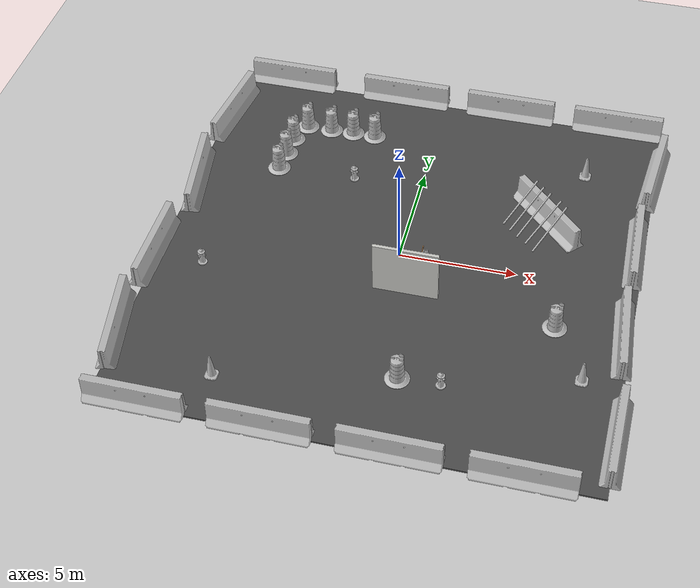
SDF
<sdf version="1.6">
 <world name="default">
  <plugin name="ros_interface_plugin" filename="librotors_gazebo_ros_interface_plugin.so"/>
  <light name="sun" type="directional">
   <pose>0 0 10 0 -0 0</pose>
   <diffuse>0.8 0.8 0.8 1</diffuse>
   <specular>0.2 0.2 0.2 1</specular>
   <attenuation>
    <range>1000</range>
    <constant>0.9</constant>
    <linear>0.01</linear>
    <quadratic>0.001</quadratic>
   </attenuation>
   <direction>-0.5 0.1 -0.9</direction>
  </light>
  <model name="ground_plane">
   <static>1</static>
   <link name="link">
    <collision name="collision">
     <geometry><plane><normal>0 0 1</normal><size>100 100</size></plane></geometry>
     <surface><friction><ode><mu>100</mu><mu2>50</mu2></ode></friction></surface>
    </collision>
    <visual name="visual">
     <cast_shadows>0</cast_shadows>
     <geometry><plane><normal>0 0 1</normal><size>100 100</size></plane></geometry>
     <material>
      <script><uri>file://media/materials/scripts/gazebo.material</uri><name>Gazebo/Grey</name></script>
     </material>
    </visual>
    <velocity_decay><linear>0</linear><angular>0</angular></velocity_decay>
   </link>
  </model>
  <physics name="default_physics" default="0" type="ode">
   <ode>
    <solver>
     <type>quick</type>
     <iters>1000</iters>
     <sor>1.3</sor>
     <use_dynamic_moi_rescaling>0</use_dynamic_moi_rescaling>
    </solver>
    <constraints>
     <cfm>0</cfm>
     <erp>0.2</erp>
     <contact_max_correcting_vel>100</contact_max_correcting_vel>
     <contact_surface_layer>0.001</contact_surface_layer>
    </constraints>
   </ode>
   <max_step_size>0.005</max_step_size>
   <real_time_factor>1</real_time_factor>
   <real_time_update_rate>200</real_time_update_rate>
  </physics>
  <scene><ambient>0.4 0.4 0.4 1</ambient><background>0.7 0.7 0.7 1</background><shadows>1</shadows></scene>
  <model name="asphalt_plane">
   <static>1</static>
   <link name="link">
    <collision name="collision"><geometry><box><size>20 20 0.1</size></box></geometry></collision>
    <visual name="visual">
     <cast_shadows>0</cast_shadows>
     <geometry><box><size>20 20 0.1</size></box></geometry>
     <material>
      <script>
       <uri>model://asphalt_plane/materials/scripts</uri>
       <uri>model://asphalt_plane/materials/textures</uri>
       <name>vrc/asphalt</name>
      </script>
     </material>
    </visual>
    <velocity_decay><linear>0</linear><angular>0</angular></velocity_decay>
   </link>
   <pose>0.076733 -0.110379 0 0 -0 0</pose>
  </model>
  <model name="StandingWall">
   <pose>0.733742 -2.04145 0 0 -0 0</pose>
   <link name="Wall_3">
    <collision name="Wall_3_Collision">
     <geometry><box><size>2.75 0.15 2.5</size></box></geometry>
     <pose>0 0 1.25 0 -0 0</pose>
    </collision>
    <visual name="Wall_3_Visual">
     <pose>0 0 1.25 0 -0 0</pose>
     <geometry><box><size>2.75 0.15 2.5</size></box></geometry>
     <material>
      <script><uri>file://media/materials/scripts/gazebo.material</uri><name>Gazebo/CeilingTiled</name></script>
      <ambient>1 1 1 1</ambient>
     </material>
     <meta><layer>0</layer></meta>
    </visual>
    <pose>-0 0 0 0 -0 3.14159</pose>
   </link>
   <static>1</static>
  </model>
  <model name="cinder_block">
   <link name="link">
    <inertial>
     <pose>0 0 0.1016 0 -0 0</pose>
     <mass>5</mass>
     <inertia>
      <ixx>0.028705</ixx>
      <ixy>0</ixy>
      <iyy>0.073708</iyy>
      <ixz>0</ixz>
      <iyz>0</iyz>
      <izz>0.06908</izz>
     </inertia>
    </inertial>
    <visual name="visual">
     <geometry><mesh><uri>model://cinder_block/meshes/cinder_block.dae</uri></mesh></geometry>
    </visual>
    <collision name="left">
     <pose>0 -0.08465 0.1016 0 -0 0</pose>
     <geometry><box><size>0.43495 0.0339 0.2032</size></box></geometry>
     <surface>
      <contact><ode><max_vel>0.1</max_vel><min_depth>0.001</min_depth></ode></contact>
      <friction><ode><mu>1</mu><mu2>1</mu2></ode></friction>
     </surface>
    </collision>
    <collision name="right">
     <pose>0 0.08465 0.1016 0 -0 0</pose>
     <geometry><box><size>0.43495 0.0339 0.2032</size></box></geometry>
     <surface>
      <contact><ode><max_vel>0.1</max_vel><min_depth>0.001</min_depth></ode></contact>
      <friction><ode><mu>1</mu><mu2>1</mu2></ode></friction>
     </surface>
    </collision>
    <collision name="front">
     <pose>0.18625 0 0.1016 0 -0 0</pose>
     <geometry><box><size>0.0339 0.1354 0.203</size></box></geometry>
     <surface>
      <contact><ode><max_vel>0.1</max_vel><min_depth>0.001</min_depth></ode></contact>
      <friction><ode><mu>1</mu><mu2>1</mu2></ode></friction>
     </surface>
    </collision>
    <collision name="middle">
     <pose>0 0 0.1016 0 -0 0</pose>
     <geometry><box><size>0.0339 0.1354 0.203</size></box></geometry>
     <surface>
      <contact><ode><max_vel>0.1</max_vel><min_depth>0.001</min_depth></ode></contact>
      <friction><ode><mu>1</mu><mu2>1</mu2></ode></friction>
     </surface>
    </collision>
    <collision name="back">
     <pose>-0.18625 0 0.1016 0 -0 0</pose>
     <geometry><box><size>0.0339 0.1354 0.203</size></box></geometry>
     <surface>
      <contact><ode><max_vel>0.1</max_vel><min_depth>0.001</min_depth></ode></contact>
      <friction><ode><mu>1</mu><mu2>1</mu2></ode></friction>
     </surface>
    </collision>
   </link>
   <pose>1.07991 0.107552 0.049095 -0.000935 -1e-06 1.57079</pose>
  </model>
  <model name="timber_board">
   <link name="base">
    <pose>0 0 0.00523 0 -0 0</pose>
    <inertial>
     <mass>0.2765</mass>
     <inertia>
      <ixx>0.0025148</ixx>
      <ixy>0</ixy>
      <ixz>0</ixz>
      <iyy>0.00024037</iyy>
      <iyz>0</iyz>
      <izz>0.00275013</izz>
     </inertia>
    </inertial>
    <collision name="collision">
     <geometry><box><size>0.089 0.609 0.039</size></box></geometry>
     <surface>
      <contact>
       <poissons_ratio>0.347</poissons_ratio>
       <elastic_modulus>8.8e+09</elastic_modulus>
       <ode><kp>100000</kp><kd>100</kd><max_vel>100</max_vel><min_depth>0.001</min_depth></ode>
      </contact>
      <friction>
       <torsional>
        <coefficient>1</coefficient>
        <use_patch_radius>0</use_patch_radius>
        <surface_radius>0.01</surface_radius>
       </torsional>
      </friction>
     </surface>
    </collision>
    <visual name="visual">
     <geometry><box><size>0.089 0.609 0.039</size></box></geometry>
     <material>
      <script><uri>file://media/materials/scripts/gazebo.material</uri><name>Gazebo/Wood</name></script>
     </material>
    </visual>
    <visual name="apriltag_Visual">
     <pose>0 0.26 0.02 0 -0 0</pose>
     <geometry><box><size>0.089 0.089 0.001</size></box></geometry>
     <material>
      <script>
       <uri>model://Apriltag36_11_00000/materials/scripts</uri>
       <uri>model://Apriltag36_11_00000/materials/textures</uri>
       <name>Apriltag36_11_00000</name>
      </script>
     </material>
    </visual>
   </link>
   <pose>0.975227 0.108175 0.35332 1.46664 -5e-06 -1.57074</pose>
  </model>
  <model name="jersey_barrier">
   <static>1</static>
   <link name="link">
    <visual name="visual">
     <geometry><mesh><uri>model://jersey_barrier/meshes/jersey_barrier.dae</uri></mesh></geometry>
    </visual>
    <collision name="upright">
     <pose>0 0 0.5715 0 -0 0</pose>
     <geometry><box><size>4.06542 0.3063 1.143</size></box></geometry>
    </collision>
    <collision name="base">
     <pose>0 0 0.032258 0 -0 0</pose>
     <geometry><box><size>4.06542 0.8107 0.064516</size></box></geometry>
    </collision>
    <collision name="base2">
     <pose>0 0 0.1 0 -0 0</pose>
     <geometry><box><size>4.06542 0.65 0.1</size></box></geometry>
    </collision>
    <collision name="base3">
     <pose>0 0 0.2 0 -0 0</pose>
     <geometry><box><size>4.06542 0.5 0.1</size></box></geometry>
    </collision>
    <collision name="left-angle">
     <pose>0 -0.224 0.2401 0.9 -0 0</pose>
     <geometry><box><size>4.06542 0.5 0.064516</size></box></geometry>
    </collision>
    <collision name="right-angle">
     <pose>0 0.224 0.2401 -0.9 0 0</pose>
     <geometry><box><size>4.06542 0.5 0.064516</size></box></geometry>
    </collision>
    <velocity_decay><linear>0</linear><angular>0</angular></velocity_decay>
   </link>
   <pose>-8 -10 0 0 -0 0</pose>
  </model>
  <model name="jersey_barrier_0">
   <static>1</static>
   <link name="link">
    <visual name="visual">
     <geometry><mesh><uri>model://jersey_barrier/meshes/jersey_barrier.dae</uri></mesh></geometry>
    </visual>
    <collision name="upright">
     <pose>0 0 0.5715 0 -0 0</pose>
     <geometry><box><size>4.06542 0.3063 1.143</size></box></geometry>
    </collision>
    <collision name="base">
     <pose>0 0 0.032258 0 -0 0</pose>
     <geometry><box><size>4.06542 0.8107 0.064516</size></box></geometry>
    </collision>
    <collision name="base2">
     <pose>0 0 0.1 0 -0 0</pose>
     <geometry><box><size>4.06542 0.65 0.1</size></box></geometry>
    </collision>
    <collision name="base3">
     <pose>0 0 0.2 0 -0 0</pose>
     <geometry><box><size>4.06542 0.5 0.1</size></box></geometry>
    </collision>
    <collision name="left-angle">
     <pose>0 -0.224 0.2401 0.9 -0 0</pose>
     <geometry><box><size>4.06542 0.5 0.064516</size></box></geometry>
    </collision>
    <collision name="right-angle">
     <pose>0 0.224 0.2401 -0.9 0 0</pose>
     <geometry><box><size>4.06542 0.5 0.064516</size></box></geometry>
    </collision>
    <velocity_decay><linear>0</linear><angular>0</angular></velocity_decay>
   </link>
   <pose>-3 -10 0 0 -0 0</pose>
  </model>
  <model name="jersey_barrier_1">
   <static>1</static>
   <link name="link">
    <visual name="visual">
     <geometry><mesh><uri>model://jersey_barrier/meshes/jersey_barrier.dae</uri></mesh></geometry>
    </visual>
    <collision name="upright">
     <pose>0 0 0.5715 0 -0 0</pose>
     <geometry><box><size>4.06542 0.3063 1.143</size></box></geometry>
    </collision>
    <collision name="base">
     <pose>0 0 0.032258 0 -0 0</pose>
     <geometry><box><size>4.06542 0.8107 0.064516</size></box></geometry>
    </collision>
    <collision name="base2">
     <pose>0 0 0.1 0 -0 0</pose>
     <geometry><box><size>4.06542 0.65 0.1</size></box></geometry>
    </collision>
    <collision name="base3">
     <pose>0 0 0.2 0 -0 0</pose>
     <geometry><box><size>4.06542 0.5 0.1</size></box></geometry>
    </collision>
    <collision name="left-angle">
     <pose>0 -0.224 0.2401 0.9 -0 0</pose>
     <geometry><box><size>4.06542 0.5 0.064516</size></box></geometry>
    </collision>
    <collision name="right-angle">
     <pose>0 0.224 0.2401 -0.9 0 0</pose>
     <geometry><box><size>4.06542 0.5 0.064516</size></box></geometry>
    </collision>
    <velocity_decay><linear>0</linear><angular>0</angular></velocity_decay>
   </link>
   <pose>2 -10 0 0 -0 0</pose>
  </model>
  <model name="jersey_barrier_2">
   <static>1</static>
   <link name="link">
    <visual name="visual">
     <geometry><mesh><uri>model://jersey_barrier/meshes/jersey_barrier.dae</uri></mesh></geometry>
    </visual>
    <collision name="upright">
     <pose>0 0 0.5715 0 -0 0</pose>
     <geometry><box><size>4.06542 0.3063 1.143</size></box></geometry>
    </collision>
    <collision name="base">
     <pose>0 0 0.032258 0 -0 0</pose>
     <geometry><box><size>4.06542 0.8107 0.064516</size></box></geometry>
    </collision>
    <collision name="base2">
     <pose>0 0 0.1 0 -0 0</pose>
     <geometry><box><size>4.06542 0.65 0.1</size></box></geometry>
    </collision>
    <collision name="base3">
     <pose>0 0 0.2 0 -0 0</pose>
     <geometry><box><size>4.06542 0.5 0.1</size></box></geometry>
    </collision>
    <collision name="left-angle">
     <pose>0 -0.224 0.2401 0.9 -0 0</pose>
     <geometry><box><size>4.06542 0.5 0.064516</size></box></geometry>
    </collision>
    <collision name="right-angle">
     <pose>0 0.224 0.2401 -0.9 0 0</pose>
     <geometry><box><size>4.06542 0.5 0.064516</size></box></geometry>
    </collision>
    <velocity_decay><linear>0</linear><angular>0</angular></velocity_decay>
   </link>
   <pose>7 -10 0 0 -0 0</pose>
  </model>
  <model name="jersey_barrier_3">
   <static>1</static>
   <link name="link">
    <visual name="visual">
     <geometry><mesh><uri>model://jersey_barrier/meshes/jersey_barrier.dae</uri></mesh></geometry>
    </visual>
    <collision name="upright">
     <pose>0 0 0.5715 0 -0 0</pose>
     <geometry><box><size>4.06542 0.3063 1.143</size></box></geometry>
    </collision>
    <collision name="base">
     <pose>0 0 0.032258 0 -0 0</pose>
     <geometry><box><size>4.06542 0.8107 0.064516</size></box></geometry>
    </collision>
    <collision name="base2">
     <pose>0 0 0.1 0 -0 0</pose>
     <geometry><box><size>4.06542 0.65 0.1</size></box></geometry>
    </collision>
    <collision name="base3">
     <pose>0 0 0.2 0 -0 0</pose>
     <geometry><box><size>4.06542 0.5 0.1</size></box></geometry>
    </collision>
    <collision name="left-angle">
     <pose>0 -0.224 0.2401 0.9 -0 0</pose>
     <geometry><box><size>4.06542 0.5 0.064516</size></box></geometry>
    </collision>
    <collision name="right-angle">
     <pose>0 0.224 0.2401 -0.9 0 0</pose>
     <geometry><box><size>4.06542 0.5 0.064516</size></box></geometry>
    </collision>
    <velocity_decay><linear>0</linear><angular>0</angular></velocity_decay>
   </link>
   <pose>-7.50675 10 0 0 -0 0</pose>
  </model>
  <model name="jersey_barrier_4">
   <static>1</static>
   <link name="link">
    <visual name="visual">
     <geometry><mesh><uri>model://jersey_barrier/meshes/jersey_barrier.dae</uri></mesh></geometry>
    </visual>
    <collision name="upright">
     <pose>0 0 0.5715 0 -0 0</pose>
     <geometry><box><size>4.06542 0.3063 1.143</size></box></geometry>
    </collision>
    <collision name="base">
     <pose>0 0 0.032258 0 -0 0</pose>
     <geometry><box><size>4.06542 0.8107 0.064516</size></box></geometry>
    </collision>
    <collision name="base2">
     <pose>0 0 0.1 0 -0 0</pose>
     <geometry><box><size>4.06542 0.65 0.1</size></box></geometry>
    </collision>
    <collision name="base3">
     <pose>0 0 0.2 0 -0 0</pose>
     <geometry><box><size>4.06542 0.5 0.1</size></box></geometry>
    </collision>
    <collision name="left-angle">
     <pose>0 -0.224 0.2401 0.9 -0 0</pose>
     <geometry><box><size>4.06542 0.5 0.064516</size></box></geometry>
    </collision>
    <collision name="right-angle">
     <pose>0 0.224 0.2401 -0.9 0 0</pose>
     <geometry><box><size>4.06542 0.5 0.064516</size></box></geometry>
    </collision>
    <velocity_decay><linear>0</linear><angular>0</angular></velocity_decay>
   </link>
   <pose>-2 10 0 0 -0 0</pose>
  </model>
  <model name="jersey_barrier_5">
   <static>1</static>
   <link name="link">
    <visual name="visual">
     <geometry><mesh><uri>model://jersey_barrier/meshes/jersey_barrier.dae</uri></mesh></geometry>
    </visual>
    <collision name="upright">
     <pose>0 0 0.5715 0 -0 0</pose>
     <geometry><box><size>4.06542 0.3063 1.143</size></box></geometry>
    </collision>
    <collision name="base">
     <pose>0 0 0.032258 0 -0 0</pose>
     <geometry><box><size>4.06542 0.8107 0.064516</size></box></geometry>
    </collision>
    <collision name="base2">
     <pose>0 0 0.1 0 -0 0</pose>
     <geometry><box><size>4.06542 0.65 0.1</size></box></geometry>
    </collision>
    <collision name="base3">
     <pose>0 0 0.2 0 -0 0</pose>
     <geometry><box><size>4.06542 0.5 0.1</size></box></geometry>
    </collision>
    <collision name="left-angle">
     <pose>0 -0.224 0.2401 0.9 -0 0</pose>
     <geometry><box><size>4.06542 0.5 0.064516</size></box></geometry>
    </collision>
    <collision name="right-angle">
     <pose>0 0.224 0.2401 -0.9 0 0</pose>
     <geometry><box><size>4.06542 0.5 0.064516</size></box></geometry>
    </collision>
    <velocity_decay><linear>0</linear><angular>0</angular></velocity_decay>
   </link>
   <pose>3 10 0 0 -0 0</pose>
  </model>
  <model name="jersey_barrier_6">
   <static>1</static>
   <link name="link">
    <visual name="visual">
     <geometry><mesh><uri>model://jersey_barrier/meshes/jersey_barrier.dae</uri></mesh></geometry>
    </visual>
    <collision name="upright">
     <pose>0 0 0.5715 0 -0 0</pose>
     <geometry><box><size>4.06542 0.3063 1.143</size></box></geometry>
    </collision>
    <collision name="base">
     <pose>0 0 0.032258 0 -0 0</pose>
     <geometry><box><size>4.06542 0.8107 0.064516</size></box></geometry>
    </collision>
    <collision name="base2">
     <pose>0 0 0.1 0 -0 0</pose>
     <geometry><box><size>4.06542 0.65 0.1</size></box></geometry>
    </collision>
    <collision name="base3">
     <pose>0 0 0.2 0 -0 0</pose>
     <geometry><box><size>4.06542 0.5 0.1</size></box></geometry>
    </collision>
    <collision name="left-angle">
     <pose>0 -0.224 0.2401 0.9 -0 0</pose>
     <geometry><box><size>4.06542 0.5 0.064516</size></box></geometry>
    </collision>
    <collision name="right-angle">
     <pose>0 0.224 0.2401 -0.9 0 0</pose>
     <geometry><box><size>4.06542 0.5 0.064516</size></box></geometry>
    </collision>
    <velocity_decay><linear>0</linear><angular>0</angular></velocity_decay>
   </link>
   <pose>8 10 0 0 -0 0</pose>
  </model>
  <model name="jersey_barrier_7">
   <static>1</static>
   <link name="link">
    <visual name="visual">
     <geometry><mesh><uri>model://jersey_barrier/meshes/jersey_barrier.dae</uri></mesh></geometry>
    </visual>
    <collision name="upright">
     <pose>0 0 0.5715 0 -0 0</pose>
     <geometry><box><size>4.06542 0.3063 1.143</size></box></geometry>
    </collision>
    <collision name="base">
     <pose>0 0 0.032258 0 -0 0</pose>
     <geometry><box><size>4.06542 0.8107 0.064516</size></box></geometry>
    </collision>
    <collision name="base2">
     <pose>0 0 0.1 0 -0 0</pose>
     <geometry><box><size>4.06542 0.65 0.1</size></box></geometry>
    </collision>
    <collision name="base3">
     <pose>0 0 0.2 0 -0 0</pose>
     <geometry><box><size>4.06542 0.5 0.1</size></box></geometry>
    </collision>
    <collision name="left-angle">
     <pose>0 -0.224 0.2401 0.9 -0 0</pose>
     <geometry><box><size>4.06542 0.5 0.064516</size></box></geometry>
    </collision>
    <collision name="right-angle">
     <pose>0 0.224 0.2401 -0.9 0 0</pose>
     <geometry><box><size>4.06542 0.5 0.064516</size></box></geometry>
    </collision>
    <velocity_decay><linear>0</linear><angular>0</angular></velocity_decay>
   </link>
   <pose>9.74902 -2.57759 0 0 -0 1.64</pose>
  </model>
  <model name="jersey_barrier_8">
   <static>1</static>
   <link name="link">
    <visual name="visual">
     <geometry><mesh><uri>model://jersey_barrier/meshes/jersey_barrier.dae</uri></mesh></geometry>
    </visual>
    <collision name="upright">
     <pose>0 0 0.5715 0 -0 0</pose>
     <geometry><box><size>4.06542 0.3063 1.143</size></box></geometry>
    </collision>
    <collision name="base">
     <pose>0 0 0.032258 0 -0 0</pose>
     <geometry><box><size>4.06542 0.8107 0.064516</size></box></geometry>
    </collision>
    <collision name="base2">
     <pose>0 0 0.1 0 -0 0</pose>
     <geometry><box><size>4.06542 0.65 0.1</size></box></geometry>
    </collision>
    <collision name="base3">
     <pose>0 0 0.2 0 -0 0</pose>
     <geometry><box><size>4.06542 0.5 0.1</size></box></geometry>
    </collision>
    <collision name="left-angle">
     <pose>0 -0.224 0.2401 0.9 -0 0</pose>
     <geometry><box><size>4.06542 0.5 0.064516</size></box></geometry>
    </collision>
    <collision name="right-angle">
     <pose>0 0.224 0.2401 -0.9 0 0</pose>
     <geometry><box><size>4.06542 0.5 0.064516</size></box></geometry>
    </collision>
    <velocity_decay><linear>0</linear><angular>0</angular></velocity_decay>
   </link>
   <pose>9.70141 2.24369 0 0 -0 1.6</pose>
  </model>
  <model name="jersey_barrier_9">
   <static>1</static>
   <link name="link">
    <visual name="visual">
     <geometry><mesh><uri>model://jersey_barrier/meshes/jersey_barrier.dae</uri></mesh></geometry>
    </visual>
    <collision name="upright">
     <pose>0 0 0.5715 0 -0 0</pose>
     <geometry><box><size>4.06542 0.3063 1.143</size></box></geometry>
    </collision>
    <collision name="base">
     <pose>0 0 0.032258 0 -0 0</pose>
     <geometry><box><size>4.06542 0.8107 0.064516</size></box></geometry>
    </collision>
    <collision name="base2">
     <pose>0 0 0.1 0 -0 0</pose>
     <geometry><box><size>4.06542 0.65 0.1</size></box></geometry>
    </collision>
    <collision name="base3">
     <pose>0 0 0.2 0 -0 0</pose>
     <geometry><box><size>4.06542 0.5 0.1</size></box></geometry>
    </collision>
    <collision name="left-angle">
     <pose>0 -0.224 0.2401 0.9 -0 0</pose>
     <geometry><box><size>4.06542 0.5 0.064516</size></box></geometry>
    </collision>
    <collision name="right-angle">
     <pose>0 0.224 0.2401 -0.9 0 0</pose>
     <geometry><box><size>4.06542 0.5 0.064516</size></box></geometry>
    </collision>
    <velocity_decay><linear>0</linear><angular>0</angular></velocity_decay>
   </link>
   <pose>-10.0607 -6.69856 0 0 0 -1.4</pose>
  </model>
  <model name="jersey_barrier_10">
   <static>1</static>
   <link name="link">
    <visual name="visual">
     <geometry><mesh><uri>model://jersey_barrier/meshes/jersey_barrier.dae</uri></mesh></geometry>
    </visual>
    <collision name="upright">
     <pose>0 0 0.5715 0 -0 0</pose>
     <geometry><box><size>4.06542 0.3063 1.143</size></box></geometry>
    </collision>
    <collision name="base">
     <pose>0 0 0.032258 0 -0 0</pose>
     <geometry><box><size>4.06542 0.8107 0.064516</size></box></geometry>
    </collision>
    <collision name="base2">
     <pose>0 0 0.1 0 -0 0</pose>
     <geometry><box><size>4.06542 0.65 0.1</size></box></geometry>
    </collision>
    <collision name="base3">
     <pose>0 0 0.2 0 -0 0</pose>
     <geometry><box><size>4.06542 0.5 0.1</size></box></geometry>
    </collision>
    <collision name="left-angle">
     <pose>0 -0.224 0.2401 0.9 -0 0</pose>
     <geometry><box><size>4.06542 0.5 0.064516</size></box></geometry>
    </collision>
    <collision name="right-angle">
     <pose>0 0.224 0.2401 -0.9 0 0</pose>
     <geometry><box><size>4.06542 0.5 0.064516</size></box></geometry>
    </collision>
    <velocity_decay><linear>0</linear><angular>0</angular></velocity_decay>
   </link>
   <pose>-10.0774 -2.27159 0 0 -0 1.56</pose>
  </model>
  <model name="jersey_barrier_11">
   <static>1</static>
   <link name="link">
    <visual name="visual">
     <geometry><mesh><uri>model://jersey_barrier/meshes/jersey_barrier.dae</uri></mesh></geometry>
    </visual>
    <collision name="upright">
     <pose>0 0 0.5715 0 -0 0</pose>
     <geometry><box><size>4.06542 0.3063 1.143</size></box></geometry>
    </collision>
    <collision name="base">
     <pose>0 0 0.032258 0 -0 0</pose>
     <geometry><box><size>4.06542 0.8107 0.064516</size></box></geometry>
    </collision>
    <collision name="base2">
     <pose>0 0 0.1 0 -0 0</pose>
     <geometry><box><size>4.06542 0.65 0.1</size></box></geometry>
    </collision>
    <collision name="base3">
     <pose>0 0 0.2 0 -0 0</pose>
     <geometry><box><size>4.06542 0.5 0.1</size></box></geometry>
    </collision>
    <collision name="left-angle">
     <pose>0 -0.224 0.2401 0.9 -0 0</pose>
     <geometry><box><size>4.06542 0.5 0.064516</size></box></geometry>
    </collision>
    <collision name="right-angle">
     <pose>0 0.224 0.2401 -0.9 0 0</pose>
     <geometry><box><size>4.06542 0.5 0.064516</size></box></geometry>
    </collision>
    <velocity_decay><linear>0</linear><angular>0</angular></velocity_decay>
   </link>
   <pose>-9.77013 2.34791 0 0 -0 1.72</pose>
  </model>
  <model name="jersey_barrier_12">
   <static>1</static>
   <link name="link">
    <visual name="visual">
     <geometry><mesh><uri>model://jersey_barrier/meshes/jersey_barrier.dae</uri></mesh></geometry>
    </visual>
    <collision name="upright">
     <pose>0 0 0.5715 0 -0 0</pose>
     <geometry><box><size>4.06542 0.3063 1.143</size></box></geometry>
    </collision>
    <collision name="base">
     <pose>0 0 0.032258 0 -0 0</pose>
     <geometry><box><size>4.06542 0.8107 0.064516</size></box></geometry>
    </collision>
    <collision name="base2">
     <pose>0 0 0.1 0 -0 0</pose>
     <geometry><box><size>4.06542 0.65 0.1</size></box></geometry>
    </collision>
    <collision name="base3">
     <pose>0 0 0.2 0 -0 0</pose>
     <geometry><box><size>4.06542 0.5 0.1</size></box></geometry>
    </collision>
    <collision name="left-angle">
     <pose>0 -0.224 0.2401 0.9 -0 0</pose>
     <geometry><box><size>4.06542 0.5 0.064516</size></box></geometry>
    </collision>
    <collision name="right-angle">
     <pose>0 0.224 0.2401 -0.9 0 0</pose>
     <geometry><box><size>4.06542 0.5 0.064516</size></box></geometry>
    </collision>
    <velocity_decay><linear>0</linear><angular>0</angular></velocity_decay>
   </link>
   <pose>10.0879 -7.62159 0 0 -0 1.56</pose>
  </model>
  <model name="jersey_barrier_13">
   <static>1</static>
   <link name="link">
    <visual name="visual">
     <geometry><mesh><uri>model://jersey_barrier/meshes/jersey_barrier.dae</uri></mesh></geometry>
    </visual>
    <collision name="upright">
     <pose>0 0 0.5715 0 -0 0</pose>
     <geometry><box><size>4.06542 0.3063 1.143</size></box></geometry>
    </collision>
    <collision name="base">
     <pose>0 0 0.032258 0 -0 0</pose>
     <geometry><box><size>4.06542 0.8107 0.064516</size></box></geometry>
    </collision>
    <collision name="base2">
     <pose>0 0 0.1 0 -0 0</pose>
     <geometry><box><size>4.06542 0.65 0.1</size></box></geometry>
    </collision>
    <collision name="base3">
     <pose>0 0 0.2 0 -0 0</pose>
     <geometry><box><size>4.06542 0.5 0.1</size></box></geometry>
    </collision>
    <collision name="left-angle">
     <pose>0 -0.224 0.2401 0.9 -0 0</pose>
     <geometry><box><size>4.06542 0.5 0.064516</size></box></geometry>
    </collision>
    <collision name="right-angle">
     <pose>0 0.224 0.2401 -0.9 0 0</pose>
     <geometry><box><size>4.06542 0.5 0.064516</size></box></geometry>
    </collision>
    <velocity_decay><linear>0</linear><angular>0</angular></velocity_decay>
   </link>
   <pose>10 7 0 0 -0 1.48</pose>
  </model>
  <model name="jersey_barrier_14">
   <static>1</static>
   <link name="link">
    <visual name="visual">
     <geometry><mesh><uri>model://jersey_barrier/meshes/jersey_barrier.dae</uri></mesh></geometry>
    </visual>
    <collision name="upright">
     <pose>0 0 0.5715 0 -0 0</pose>
     <geometry><box><size>4.06542 0.3063 1.143</size></box></geometry>
    </collision>
    <collision name="base">
     <pose>0 0 0.032258 0 -0 0</pose>
     <geometry><box><size>4.06542 0.8107 0.064516</size></box></geometry>
    </collision>
    <collision name="base2">
     <pose>0 0 0.1 0 -0 0</pose>
     <geometry><box><size>4.06542 0.65 0.1</size></box></geometry>
    </collision>
    <collision name="base3">
     <pose>0 0 0.2 0 -0 0</pose>
     <geometry><box><size>4.06542 0.5 0.1</size></box></geometry>
    </collision>
    <collision name="left-angle">
     <pose>0 -0.224 0.2401 0.9 -0 0</pose>
     <geometry><box><size>4.06542 0.5 0.064516</size></box></geometry>
    </collision>
    <collision name="right-angle">
     <pose>0 0.224 0.2401 -0.9 0 0</pose>
     <geometry><box><size>4.06542 0.5 0.064516</size></box></geometry>
    </collision>
    <velocity_decay><linear>0</linear><angular>0</angular></velocity_decay>
   </link>
   <pose>-9.64482 7.05946 0 0 -0 1.44</pose>
  </model>
  <model name="jersey_barrier_15">
   <static>1</static>
   <link name="link">
    <visual name="visual">
     <geometry><mesh><uri>model://jersey_barrier/meshes/jersey_barrier.dae</uri></mesh></geometry>
    </visual>
    <collision name="upright">
     <pose>0 0 0.5715 0 -0 0</pose>
     <geometry><box><size>4.06542 0.3063 1.143</size></box></geometry>
    </collision>
    <collision name="base">
     <pose>0 0 0.032258 0 -0 0</pose>
     <geometry><box><size>4.06542 0.8107 0.064516</size></box></geometry>
    </collision>
    <collision name="base2">
     <pose>0 0 0.1 0 -0 0</pose>
     <geometry><box><size>4.06542 0.65 0.1</size></box></geometry>
    </collision>
    <collision name="base3">
     <pose>0 0 0.2 0 -0 0</pose>
     <geometry><box><size>4.06542 0.5 0.1</size></box></geometry>
    </collision>
    <collision name="left-angle">
     <pose>0 -0.224 0.2401 0.9 -0 0</pose>
     <geometry><box><size>4.06542 0.5 0.064516</size></box></geometry>
    </collision>
    <collision name="right-angle">
     <pose>0 0.224 0.2401 -0.9 0 0</pose>
     <geometry><box><size>4.06542 0.5 0.064516</size></box></geometry>
    </collision>
    <velocity_decay><linear>0</linear><angular>0</angular></velocity_decay>
   </link>
   <pose>5.79897 3.36957 0.049969 -0 1.5e-05 2.36</pose>
  </model>
  <model name="Construction Barrel">
   <link name="link">
    <inertial>
     <pose>0 0 0.4 0 -0 0</pose>
     <mass>500</mass>
     <inertia><ixx>51.2096</ixx><iyy>51.2096</iyy><izz>25</izz><ixy>0</ixy><ixz>0</ixz><iyz>0</iyz></inertia>
    </inertial>
    <collision name="collision">
     <geometry><mesh><uri>model://construction_barrel/meshes/construction_barrel.dae</uri></mesh></geometry>
    </collision>
    <visual name="visual">
     <geometry><mesh><uri>model://construction_barrel/meshes/construction_barrel.dae</uri></mesh></geometry>
    </visual>
    <velocity_decay><linear>0</linear><angular>0</angular></velocity_decay>
   </link>
   <pose>7.00006 -2.54635 0.049985 -2.9e-05 -6.1e-05 0.000395</pose>
   <static>0</static>
  </model>
  <model name="Construction Barrel_0">
   <link name="link">
    <inertial>
     <pose>0 0 0.4 0 -0 0</pose>
     <mass>500</mass>
     <inertia><ixx>51.2096</ixx><iyy>51.2096</iyy><izz>25</izz><ixy>0</ixy><ixz>0</ixz><iyz>0</iyz></inertia>
    </inertial>
    <collision name="collision">
     <geometry><mesh><uri>model://construction_barrel/meshes/construction_barrel.dae</uri></mesh></geometry>
    </collision>
    <visual name="visual">
     <geometry><mesh><uri>model://construction_barrel/meshes/construction_barrel.dae</uri></mesh></geometry>
    </visual>
    <velocity_decay><linear>0</linear><angular>0</angular></velocity_decay>
   </link>
   <pose>1.45178 -6.51128 0.049985 6.8e-05 -5e-06 4e-05</pose>
   <static>0</static>
  </model>
  <model name="Construction Barrel_1">
   <link name="link">
    <inertial>
     <pose>0 0 0.4 0 -0 0</pose>
     <mass>500</mass>
     <inertia><ixx>51.2096</ixx><iyy>51.2096</iyy><izz>25</izz><ixy>0</ixy><ixz>0</ixz><iyz>0</iyz></inertia>
    </inertial>
    <collision name="collision">
     <geometry><mesh><uri>model://construction_barrel/meshes/construction_barrel.dae</uri></mesh></geometry>
    </collision>
    <visual name="visual">
     <geometry><mesh><uri>model://construction_barrel/meshes/construction_barrel.dae</uri></mesh></geometry>
    </visual>
    <velocity_decay><linear>0</linear><angular>0</angular></velocity_decay>
   </link>
   <pose>-6.50482 3.9826 0.049982 -1.6e-05 -7.5e-05 -0.009617</pose>
   <static>0</static>
  </model>
  <model name="Construction Barrel_2">
   <link name="link">
    <inertial>
     <pose>0 0 0.4 0 -0 0</pose>
     <mass>500</mass>
     <inertia><ixx>51.2096</ixx><iyy>51.2096</iyy><izz>25</izz><ixy>0</ixy><ixz>0</ixz><iyz>0</iyz></inertia>
    </inertial>
    <collision name="collision">
     <geometry><mesh><uri>model://construction_barrel/meshes/construction_barrel.dae</uri></mesh></geometry>
    </collision>
    <visual name="visual">
     <geometry><mesh><uri>model://construction_barrel/meshes/construction_barrel.dae</uri></mesh></geometry>
    </visual>
    <velocity_decay><linear>0</linear><angular>0</angular></velocity_decay>
   </link>
   <pose>-6.45065 4.99639 0.049982 7.8e-05 -4e-06 0.064982</pose>
   <static>0</static>
  </model>
  <model name="Construction Barrel_3">
   <link name="link">
    <inertial>
     <pose>0 0 0.4 0 -0 0</pose>
     <mass>500</mass>
     <inertia><ixx>51.2096</ixx><iyy>51.2096</iyy><izz>25</izz><ixy>0</ixy><ixz>0</ixz><iyz>0</iyz></inertia>
    </inertial>
    <collision name="collision">
     <geometry><mesh><uri>model://construction_barrel/meshes/construction_barrel.dae</uri></mesh></geometry>
    </collision>
    <visual name="visual">
     <geometry><mesh><uri>model://construction_barrel/meshes/construction_barrel.dae</uri></mesh></geometry>
    </visual>
    <velocity_decay><linear>0</linear><angular>0</angular></velocity_decay>
   </link>
   <pose>-6.40174 6.0111 0.049979 8.5e-05 2.1e-05 -0.12073</pose>
   <static>0</static>
  </model>
  <model name="Construction Barrel_4">
   <link name="link">
    <inertial>
     <pose>0 0 0.4 0 -0 0</pose>
     <mass>500</mass>
     <inertia><ixx>51.2096</ixx><iyy>51.2096</iyy><izz>25</izz><ixy>0</ixy><ixz>0</ixz><iyz>0</iyz></inertia>
    </inertial>
    <collision name="collision">
     <geometry><mesh><uri>model://construction_barrel/meshes/construction_barrel.dae</uri></mesh></geometry>
    </collision>
    <visual name="visual">
     <geometry><mesh><uri>model://construction_barrel/meshes/construction_barrel.dae</uri></mesh></geometry>
    </visual>
    <velocity_decay><linear>0</linear><angular>0</angular></velocity_decay>
   </link>
   <pose>-6.00634 7.0088 0.049978 -2.2e-05 -8.8e-05 -0.049572</pose>
   <static>0</static>
  </model>
  <model name="Construction Barrel_5">
   <link name="link">
    <inertial>
     <pose>0 0 0.4 0 -0 0</pose>
     <mass>500</mass>
     <inertia><ixx>51.2096</ixx><iyy>51.2096</iyy><izz>25</izz><ixy>0</ixy><ixz>0</ixz><iyz>0</iyz></inertia>
    </inertial>
    <collision name="collision">
     <geometry><mesh><uri>model://construction_barrel/meshes/construction_barrel.dae</uri></mesh></geometry>
    </collision>
    <visual name="visual">
     <geometry><mesh><uri>model://construction_barrel/meshes/construction_barrel.dae</uri></mesh></geometry>
    </visual>
    <velocity_decay><linear>0</linear><angular>0</angular></velocity_decay>
   </link>
   <pose>-4.87565 7.00813 0.049985 6.8e-05 -5e-06 0.146166</pose>
   <static>0</static>
  </model>
  <model name="Construction Barrel_6">
   <link name="link">
    <inertial>
     <pose>0 0 0.4 0 -0 0</pose>
     <mass>500</mass>
     <inertia><ixx>51.2096</ixx><iyy>51.2096</iyy><izz>25</izz><ixy>0</ixy><ixz>0</ixz><iyz>0</iyz></inertia>
    </inertial>
    <collision name="collision">
     <geometry><mesh><uri>model://construction_barrel/meshes/construction_barrel.dae</uri></mesh></geometry>
    </collision>
    <visual name="visual">
     <geometry><mesh><uri>model://construction_barrel/meshes/construction_barrel.dae</uri></mesh></geometry>
    </visual>
    <velocity_decay><linear>0</linear><angular>0</angular></velocity_decay>
   </link>
   <pose>-3.84926 7.04066 0.049974 -2.6e-05 -9.7e-05 0.049376</pose>
   <static>0</static>
  </model>
  <model name="Construction Barrel_7">
   <link name="link">
    <inertial>
     <pose>0 0 0.4 0 -0 0</pose>
     <mass>500</mass>
     <inertia><ixx>51.2096</ixx><iyy>51.2096</iyy><izz>25</izz><ixy>0</ixy><ixz>0</ixz><iyz>0</iyz></inertia>
    </inertial>
    <collision name="collision">
     <geometry><mesh><uri>model://construction_barrel/meshes/construction_barrel.dae</uri></mesh></geometry>
    </collision>
    <visual name="visual">
     <geometry><mesh><uri>model://construction_barrel/meshes/construction_barrel.dae</uri></mesh></geometry>
    </visual>
    <velocity_decay><linear>0</linear><angular>0</angular></velocity_decay>
   </link>
   <pose>-2.83231 7.03516 0.049984 7.2e-05 -5e-06 -0.005157</pose>
   <static>0</static>
  </model>
  <model name="Construction Cone">
   <link name="link">
    <collision name="collision">
     <geometry>
      <mesh><scale>10 10 10</scale><uri>model://construction_cone/meshes/construction_cone.dae</uri></mesh>
     </geometry>
    </collision>
    <visual name="visual">
     <geometry>
      <mesh><scale>10 10 10</scale><uri>model://construction_cone/meshes/construction_cone.dae</uri></mesh>
     </geometry>
    </visual>
    <velocity_decay><linear>0</linear><angular>0</angular></velocity_decay>
    <inertial>
     <inertia><ixx>1</ixx><ixy>0</ixy><ixz>0</ixz><iyy>1</iyy><iyz>0</iyz><izz>1</izz></inertia>
     <mass>1</mass>
    </inertial>
   </link>
   <pose>-5.59121 -8 0.049755 0 -0 0</pose>
   <static>0</static>
  </model>
  <model name="Construction Cone_0">
   <link name="link">
    <collision name="collision">
     <geometry>
      <mesh><scale>10 10 10</scale><uri>model://construction_cone/meshes/construction_cone.dae</uri></mesh>
     </geometry>
    </collision>
    <visual name="visual">
     <geometry>
      <mesh><scale>10 10 10</scale><uri>model://construction_cone/meshes/construction_cone.dae</uri></mesh>
     </geometry>
    </visual>
    <velocity_decay><linear>0</linear><angular>0</angular></velocity_decay>
    <inertial>
     <inertia><ixx>1</ixx><ixy>0</ixy><ixz>0</ixz><iyy>1</iyy><iyz>0</iyz><izz>1</izz></inertia>
     <mass>1</mass>
    </inertial>
   </link>
   <pose>6.99685 6.55732 0.049755 0 0 -0.007012</pose>
   <static>0</static>
  </model>
  <model name="Construction Cone_1">
   <link name="link">
    <collision name="collision">
     <geometry>
      <mesh><scale>10 10 10</scale><uri>model://construction_cone/meshes/construction_cone.dae</uri></mesh>
     </geometry>
    </collision>
    <visual name="visual">
     <geometry>
      <mesh><scale>10 10 10</scale><uri>model://construction_cone/meshes/construction_cone.dae</uri></mesh>
     </geometry>
    </visual>
    <velocity_decay><linear>0</linear><angular>0</angular></velocity_decay>
    <inertial>
     <inertia><ixx>1</ixx><ixy>0</ixy><ixz>0</ixz><iyy>1</iyy><iyz>0</iyz><izz>1</izz></inertia>
     <mass>1</mass>
    </inertial>
   </link>
   <pose>8.42887 -5 0.049755 0 -0 0</pose>
   <static>0</static>
  </model>
  <model name="fire_hydrant">
   <static>1</static>
   <link name="link">
    <collision name="collision">
     <geometry><mesh><uri>model://fire_hydrant/meshes/fire_hydrant.dae</uri></mesh></geometry>
    </collision>
    <visual name="visual">
     <geometry><mesh><uri>model://fire_hydrant/meshes/fire_hydrant.dae</uri></mesh></geometry>
    </visual>
    <velocity_decay><linear>0</linear><angular>0</angular></velocity_decay>
   </link>
   <pose>3.18024 -6.51118 0 0 -0 0</pose>
  </model>
  <model name="fire_hydrant_0">
   <static>1</static>
   <link name="link">
    <collision name="collision">
     <geometry><mesh><uri>model://fire_hydrant/meshes/fire_hydrant.dae</uri></mesh></geometry>
    </collision>
    <visual name="visual">
     <geometry><mesh><uri>model://fire_hydrant/meshes/fire_hydrant.dae</uri></mesh></geometry>
    </visual>
    <velocity_decay><linear>0</linear><angular>0</angular></velocity_decay>
   </link>
   <pose>-3 4 0 0 -0 0</pose>
  </model>
  <model name="fire_hydrant_1">
   <static>1</static>
   <link name="link">
    <collision name="collision">
     <geometry><mesh><uri>model://fire_hydrant/meshes/fire_hydrant.dae</uri></mesh></geometry>
    </collision>
    <visual name="visual">
     <geometry><mesh><uri>model://fire_hydrant/meshes/fire_hydrant.dae</uri></mesh></geometry>
    </visual>
    <velocity_decay><linear>0</linear><angular>0</angular></velocity_decay>
   </link>
   <pose>-7.90686 -2.41363 0 0 -0 0</pose>
  </model>
  <model name="timber_log">
   <pose>4.5428 3.53552 0.774487 0.634926 -0.065589 -0.691421</pose>
   <static>0</static>
   <link name="link">
    <collision name="collision">
     <geometry><mesh><uri>model://timber_log/meshes/timber_log.dae</uri></mesh></geometry>
    </collision>
    <visual name="visual">
     <geometry><mesh><uri>model://timber_log/meshes/timber_log.dae</uri></mesh></geometry>
    </visual>
    <inertial>
     <inertia><ixx>1</ixx><ixy>0</ixy><ixz>0</ixz><iyy>1</iyy><iyz>0</iyz><izz>1</izz></inertia>
     <mass>1</mass>
    </inertial>
   </link>
  </model>
  <model name="timber_log_0">
   <pose>4.87627 3.21231 0.776529 0.637127 -0.065962 -0.691338</pose>
   <static>0</static>
   <link name="link">
    <collision name="collision">
     <geometry><mesh><uri>model://timber_log/meshes/timber_log.dae</uri></mesh></geometry>
    </collision>
    <visual name="visual">
     <geometry><mesh><uri>model://timber_log/meshes/timber_log.dae</uri></mesh></geometry>
    </visual>
    <inertial>
     <inertia><ixx>1</ixx><ixy>0</ixy><ixz>0</ixz><iyy>1</iyy><iyz>0</iyz><izz>1</izz></inertia>
     <mass>1</mass>
    </inertial>
   </link>
  </model>
  <model name="timber_log_1">
   <pose>5.23118 2.8815 0.782247 0.643312 -0.066954 -0.691191</pose>
   <static>0</static>
   <link name="link">
    <collision name="collision">
     <geometry><mesh><uri>model://timber_log/meshes/timber_log.dae</uri></mesh></geometry>
    </collision>
    <visual name="visual">
     <geometry><mesh><uri>model://timber_log/meshes/timber_log.dae</uri></mesh></geometry>
    </visual>
    <inertial>
     <inertia><ixx>1</ixx><ixy>0</ixy><ixz>0</ixz><iyy>1</iyy><iyz>0</iyz><izz>1</izz></inertia>
     <mass>1</mass>
    </inertial>
   </link>
  </model>
  <model name="timber_log_2">
   <pose>5.68267 2.51251 0.805751 0.668535 -0.033619 -0.739083</pose>
   <static>0</static>
   <link name="link">
    <collision name="collision">
     <geometry><mesh><uri>model://timber_log/meshes/timber_log.dae</uri></mesh></geometry>
    </collision>
    <visual name="visual">
     <geometry><mesh><uri>model://timber_log/meshes/timber_log.dae</uri></mesh></geometry>
    </visual>
    <inertial>
     <inertia><ixx>1</ixx><ixy>0</ixy><ixz>0</ixz><iyy>1</iyy><iyz>0</iyz><izz>1</izz></inertia>
     <mass>1</mass>
    </inertial>
   </link>
  </model>
  <model name="timber_log_3">
   <pose>6.01799 2.16913 0.801645 0.66437 -0.062941 -0.700064</pose>
   <static>0</static>
   <link name="link">
    <collision name="collision">
     <geometry><mesh><uri>model://timber_log/meshes/timber_log.dae</uri></mesh></geometry>
    </collision>
    <visual name="visual">
     <geometry><mesh><uri>model://timber_log/meshes/timber_log.dae</uri></mesh></geometry>
    </visual>
    <inertial>
     <inertia><ixx>1</ixx><ixy>0</ixy><ixz>0</ixz><iyy>1</iyy><iyz>0</iyz><izz>1</izz></inertia>
     <mass>1</mass>
    </inertial>
   </link>
  </model>
  <gravity>0 0 -9.81</gravity>
  <magnetic_field>6e-06 2.3e-05 -4.2e-05</magnetic_field>
  <atmosphere type="adiabatic"/>
  <spherical_coordinates>
   <surface_model>EARTH_WGS84</surface_model>
   <latitude_deg>0</latitude_deg>
   <longitude_deg>0</longitude_deg>
   <elevation>0</elevation>
   <heading_deg>0</heading_deg>
  </spherical_coordinates>
 </world>
</sdf>
